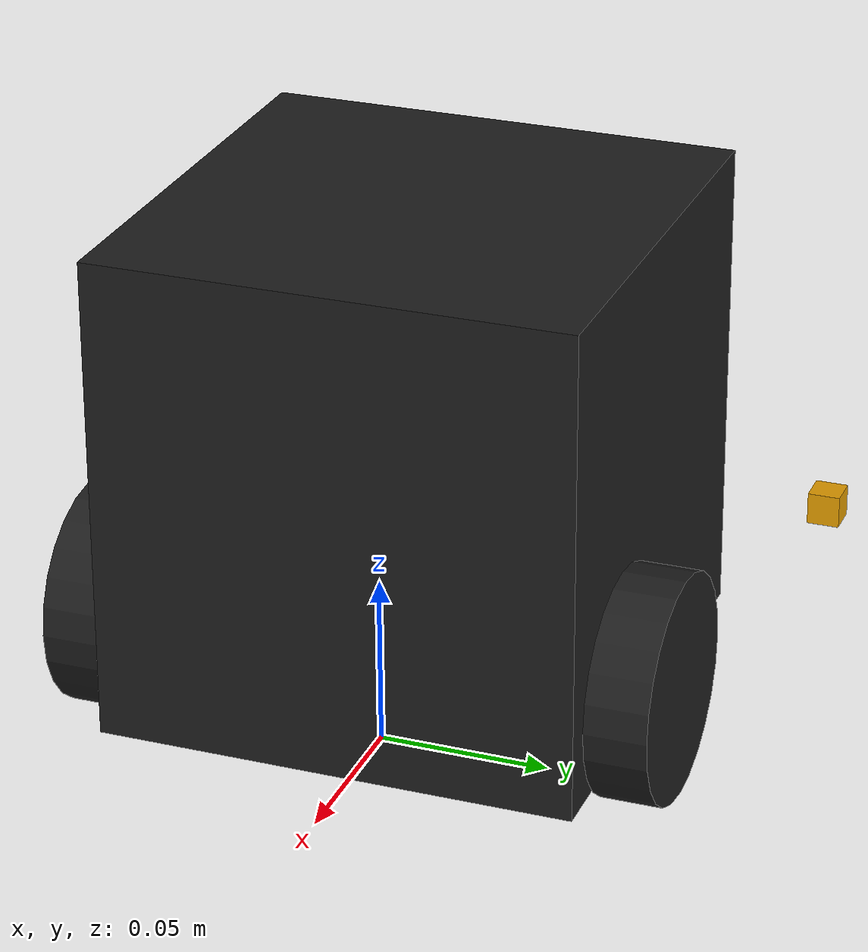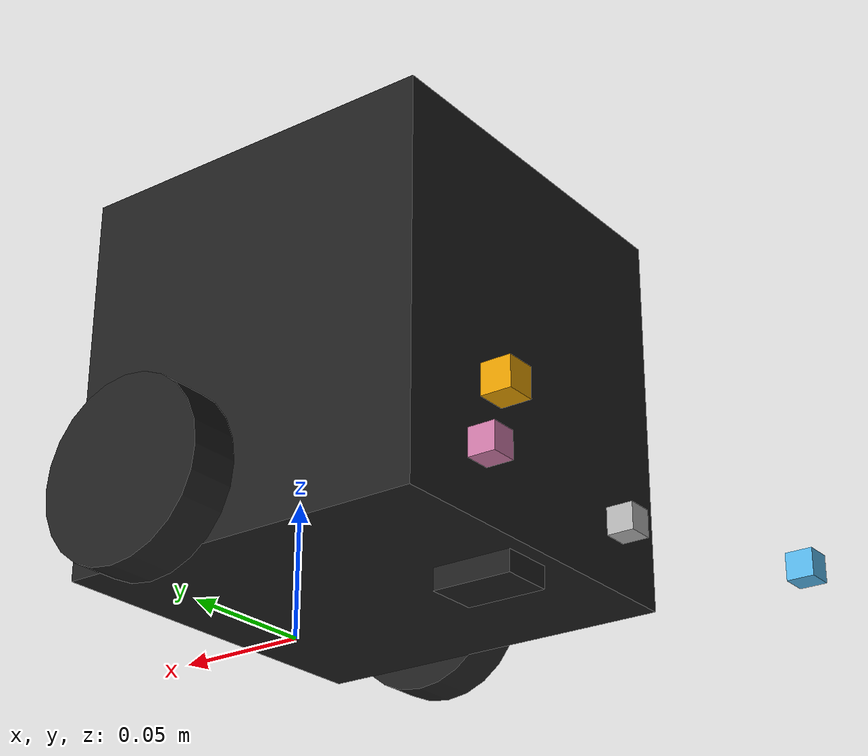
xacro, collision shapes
<?xml version="1.0" ?>
<robot name="turtlebot3_burger" xmlns:xacro="http://ros.org/wiki/xacro">
  <xacro:include filename="$(find candybot5_description)/urdf/common_properties.xacro"/>
  <xacro:include filename="$(find candybot5_description)/urdf/turtlebot3_burger.gazebo.xacro"/>

  <link name="base_footprint"/>

  <joint name="base_joint" type="fixed">
    <parent link="base_footprint"/>
    <child link="base_link"/>
    <origin xyz="0.0 0.0 0.010" rpy="0 0 0"/>
  </joint>

  <link name="base_link">
    <visual>
      <origin xyz="-0.032 0 0.0" rpy="0 0 0"/>
      <geometry>
        <mesh filename="package://candybot5_description/meshes/bases/burger_base.stl" scale="0.001 0.001 0.001"/>
      </geometry>
      <material name="light_black"/>
    </visual>

    <collision>
      <origin xyz="-0.032 0 0.070" rpy="0 0 0"/>
      <geometry>
        <box size="0.140 0.140 0.143"/>
      </geometry>
    </collision>

    <inertial>
      <origin xyz="0 0 0" rpy="0 0 0"/>
      <mass value="8.2573504e-01"/>
      <inertia ixx="2.2124416e-03" ixy="-1.2294101e-05" ixz="3.4938785e-05"
               iyy="2.1193702e-03" iyz="-5.0120904e-06"
               izz="2.0064271e-03" />
    </inertial>
  </link>

  <joint name="wheel_left_joint" type="continuous">
    <parent link="base_link"/>
    <child link="wheel_left_link"/>
    <origin xyz="0.0 0.08 0.023" rpy="-1.57 0 0"/>
    <axis xyz="0 0 1"/>
  </joint>

  <link name="wheel_left_link">
    <visual>
      <origin xyz="0 0 0" rpy="1.57 0 0"/>
      <geometry>
        <mesh filename="package://candybot5_description/meshes/wheels/left_tire.stl" scale="0.001 0.001 0.001"/>
      </geometry>
      <material name="dark"/>
    </visual>

    <collision>
      <origin xyz="0 0 0" rpy="0 0 0"/>
      <geometry>
        <cylinder length="0.018" radius="0.033"/>
      </geometry>
    </collision>

    <inertial>
      <origin xyz="0 0 0" />
      <mass value="2.8498940e-02" />
      <inertia ixx="1.1175580e-05" ixy="-4.2369783e-11" ixz="-5.9381719e-09"
               iyy="1.1192413e-05" iyz="-1.4400107e-11"
               izz="2.0712558e-05" />
      </inertial>
  </link>

  <joint name="wheel_right_joint" type="continuous">
    <parent link="base_link"/>
    <child link="wheel_right_link"/>
    <origin xyz="0.0 -0.080 0.023" rpy="-1.57 0 0"/>
    <axis xyz="0 0 1"/>
  </joint>

  <link name="wheel_right_link">
    <visual>
      <origin xyz="0 0 0" rpy="1.57 0 0"/>
      <geometry>
        <mesh filename="package://candybot5_description/meshes/wheels/right_tire.stl" scale="0.001 0.001 0.001"/>
      </geometry>
      <material name="dark"/>
    </visual>

    <collision>
      <origin xyz="0 0 0" rpy="0 0 0"/>
      <geometry>
        <cylinder length="0.018" radius="0.033"/>
      </geometry>
    </collision>

    <inertial>
      <origin xyz="0 0 0" />
      <mass value="2.8498940e-02" />
      <inertia ixx="1.1175580e-05" ixy="-4.2369783e-11" ixz="-5.9381719e-09"
               iyy="1.1192413e-05" iyz="-1.4400107e-11"
               izz="2.0712558e-05" />
      </inertial>
  </link>

  <joint name="caster_back_joint" type="fixed">
    <parent link="base_link"/>
    <child link="caster_back_link"/>
    <origin xyz="-0.081 0 -0.004" rpy="-1.57 0 0"/>
  </joint>

  <link name="caster_back_link">
    <collision>
      <origin xyz="0 0.001 0" rpy="0 0 0"/>
      <geometry>
        <box size="0.030 0.009 0.020"/>
      </geometry>
    </collision>

    <inertial>
      <origin xyz="0 0 0" />
      <mass value="0.005" />
      <inertia ixx="0.001" ixy="0.0" ixz="0.0"
               iyy="0.001" iyz="0.0"
               izz="0.001" />
    </inertial>
  </link>

  <joint name="imu_joint" type="fixed">
    <parent link="base_link"/>
    <child link="imu_link"/>
    <origin xyz="-0.032 0 0.068" rpy="0 0 0"/>
  </joint>

  <link name="imu_link"/>

  <joint name="sonar_front_joint1" type="fixed">
    <axis xyz="0 1 0" />
    <origin rpy="0 0 0" xyz="-0.11 0.04 0.03" />
    <parent link="base_footprint"/>
    <child link="base_sonar_front1"/>
  </joint>

  <link name="base_sonar_front1">
    <collision>
      <origin xyz="0 0 0" rpy="0 0 0"/>
      <geometry>
        <box size="0.01 0.01 0.01"/>
      </geometry>
    </collision>
    <visual>
      <origin xyz="0 0 0" rpy="0 0 0"/>
      <geometry>
        <box size="0.01 0.01 0.01"/>
      </geometry>
    </visual>
    <inertial>
      <mass value="1e-5" />
      <origin xyz="0 0 0" rpy="0 0 0"/>
      <inertia ixx="1e-6" ixy="0" ixz="0" iyy="1e-6" iyz="0" izz="1e-6" />
    </inertial>
   </link>

  <joint name="sonar_front_joint2" type="fixed">
    <axis xyz="0 1 0" />
    <origin rpy="0 0 0" xyz="-0.11 -0.04 0.03" />
    <parent link="base_footprint"/>
    <child link="base_sonar_front2"/>
  </joint>

  <link name="base_sonar_front2">
    <collision>
      <origin xyz="0 0 0" rpy="0 0 0"/>
      <geometry>
        <box size="0.01 0.01 0.01"/>
      </geometry>
    </collision>
    <visual>
      <origin xyz="0 0 0" rpy="0 0 0"/>
      <geometry>
        <box size="0.01 0.01 0.01"/>
      </geometry>
    </visual>
    <inertial>
      <mass value="1e-5" />
      <origin xyz="0 0 0" rpy="0 0 0"/>
      <inertia ixx="1e-6" ixy="0" ixz="0" iyy="1e-6" iyz="0" izz="1e-6" />
    </inertial>
   </link>

  <joint name="infrared_front_joint1" type="fixed">
    <axis xyz="0 1 0" />
    <origin rpy="0 1.57 0" xyz="-0.15 0.09 0.02" />
    <parent link="base_footprint"/>
    <child link="base_infrared_front1"/>
  </joint>

  <link name="base_infrared_front1">
    <collision>
      <origin xyz="0 0 0" rpy="0 0 0"/>
      <geometry>
        <box size="0.01 0.01 0.01"/>
      </geometry>
    </collision>
    <visual>
      <origin xyz="0 0 0" rpy="0 0 0"/>
      <geometry>
        <box size="0.01 0.01 0.01"/>
      </geometry>
    </visual>
    <inertial>
      <mass value="1e-5" />
      <origin xyz="0 0 0" rpy="0 0 0"/>
      <inertia ixx="1e-6" ixy="0" ixz="0" iyy="1e-6" iyz="0" izz="1e-6" />
    </inertial>
   </link>

  <joint name="infrared_front_joint2" type="fixed">
    <axis xyz="0 1 0" />
    <origin rpy="0 1.57 0" xyz="-0.15 -0.09 0.02" />
    <parent link="base_footprint"/>
    <child link="base_infrared_front2"/>
  </joint>

  <link name="base_infrared_front2">
    <collision>
      <origin xyz="0 0 0" rpy="0 0 0"/>
      <geometry>
        <box size="0.01 0.01 0.01"/>
      </geometry>
    </collision>
    <visual>
      <origin xyz="0 0 0" rpy="0 0 0"/>
      <geometry>
        <box size="0.01 0.01 0.01"/>
      </geometry>
    </visual>
    <inertial>
      <mass value="1e-5" />
      <origin xyz="0 0 0" rpy="0 0 0"/>
      <inertia ixx="1e-6" ixy="0" ixz="0" iyy="1e-6" iyz="0" izz="1e-6" />
    </inertial>
   </link>

</robot>
